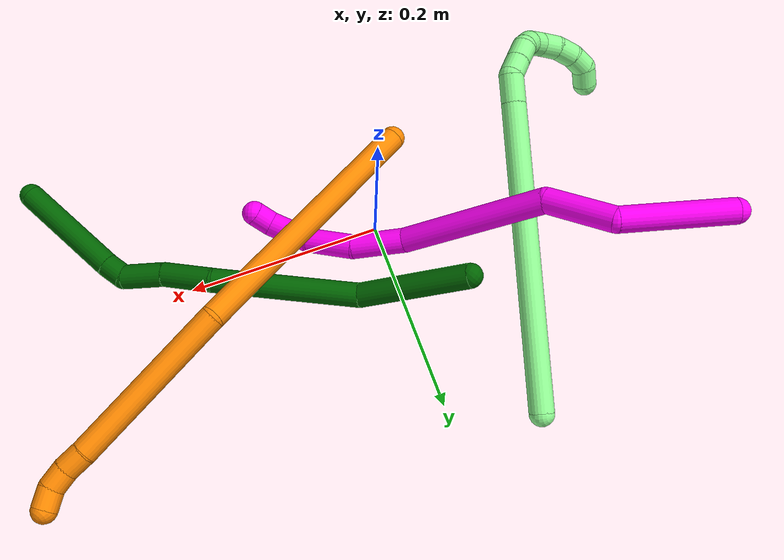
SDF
<sdf version="1.7">
 <world name="default">
  <model name="6">
   <static>0</static>
   <link name="6">
    <collision name="collision-cylinder-e_1_1_4">
     <pose>0.042302 -0.031732 0.026113 0.882244 0.799871 0.393996</pose>
     <geometry><cylinder><radius>0.0125</radius><length>0.117955</length></cylinder></geometry>
     <surface>
      <friction><ode><mu>1.16</mu><mu2>1.16</mu2><slip1>0</slip1><slip2>0</slip2></ode></friction>
      <contact><ode><kp>1e+06</kp><kd>1</kd><max_vel>0</max_vel><min_depth>0.001</min_depth></ode></contact>
     </surface>
    </collision>
    <visual name="visual-cylinder-e_1_1_4">
     <pose>0.042302 -0.031732 0.026113 0.882244 0.799871 0.393996</pose>
     <geometry><cylinder><radius>0.0125</radius><length>0.117955</length></cylinder></geometry>
     <material><ambient>0 0.392157 0.003922 1</ambient></material>
    </visual>
    <collision name="collision-cylinder-e_2_4_5">
     <pose>0.126405 -0.082142 0.11052 0.310066 0.599132 0.096467</pose>
     <geometry><cylinder><radius>0.0125</radius><length>0.148247</length></cylinder></geometry>
     <surface>
      <friction><ode><mu>1.16</mu><mu2>1.16</mu2><slip1>0</slip1><slip2>0</slip2></ode></friction>
      <contact><ode><kp>1e+06</kp><kd>1</kd><max_vel>0</max_vel><min_depth>0.001</min_depth></ode></contact>
     </surface>
    </collision>
    <visual name="visual-cylinder-e_2_4_5">
     <pose>0.126405 -0.082142 0.11052 0.310066 0.599132 0.096467</pose>
     <geometry><cylinder><radius>0.0125</radius><length>0.148247</length></cylinder></geometry>
     <material><ambient>0 0.392157 0.003922 1</ambient></material>
    </visual>
    <collision name="collision-cylinder-e_3_5_6">
     <pose>0.182518 -0.114071 0.18699 0.629924 0.566687 0.18917</pose>
     <geometry><cylinder><radius>0.0125</radius><length>0.053323</length></cylinder></geometry>
     <surface>
      <friction><ode><mu>1.16</mu><mu2>1.16</mu2><slip1>0</slip1><slip2>0</slip2></ode></friction>
      <contact><ode><kp>1e+06</kp><kd>1</kd><max_vel>0</max_vel><min_depth>0.001</min_depth></ode></contact>
     </surface>
    </collision>
    <visual name="visual-cylinder-e_3_5_6">
     <pose>0.182518 -0.114071 0.18699 0.629924 0.566687 0.18917</pose>
     <geometry><cylinder><radius>0.0125</radius><length>0.053323</length></cylinder></geometry>
     <material><ambient>0 0.392157 0.003922 1</ambient></material>
    </visual>
    <collision name="collision-cylinder-e_4_6_7">
     <pose>0.211823 -0.135432 0.218982 0.530873 0.752261 0.213906</pose>
     <geometry><cylinder><radius>0.0125</radius><length>0.043882</length></cylinder></geometry>
     <surface>
      <friction><ode><mu>1.16</mu><mu2>1.16</mu2><slip1>0</slip1><slip2>0</slip2></ode></friction>
      <contact><ode><kp>1e+06</kp><kd>1</kd><max_vel>0</max_vel><min_depth>0.001</min_depth></ode></contact>
     </surface>
    </collision>
    <visual name="visual-cylinder-e_4_6_7">
     <pose>0.211823 -0.135432 0.218982 0.530873 0.752261 0.213906</pose>
     <geometry><cylinder><radius>0.0125</radius><length>0.043882</length></cylinder></geometry>
     <material><ambient>0 0.392157 0.003922 1</ambient></material>
    </visual>
    <collision name="collision-cylinder-e_5_7_8">
     <pose>0.227947 -0.149121 0.242446 0.524182 0.101247 0.027182</pose>
     <geometry><cylinder><radius>0.0125</radius><length>0.022406</length></cylinder></geometry>
     <surface>
      <friction><ode><mu>1.16</mu><mu2>1.16</mu2><slip1>0</slip1><slip2>0</slip2></ode></friction>
      <contact><ode><kp>1e+06</kp><kd>1</kd><max_vel>0</max_vel><min_depth>0.001</min_depth></ode></contact>
     </surface>
    </collision>
    <visual name="visual-cylinder-e_5_7_8">
     <pose>0.227947 -0.149121 0.242446 0.524182 0.101247 0.027182</pose>
     <geometry><cylinder><radius>0.0125</radius><length>0.022406</length></cylinder></geometry>
     <material><ambient>0 0.392157 0.003922 1</ambient></material>
    </visual>
    <collision name="collision-cylinder-e_6_8_2">
     <pose>0.229034 -0.181594 0.302458 0.490491 -0.000801 -0.0002</pose>
     <geometry><cylinder><radius>0.0125</radius><length>0.114188</length></cylinder></geometry>
     <surface>
      <friction><ode><mu>1.16</mu><mu2>1.16</mu2><slip1>0</slip1><slip2>0</slip2></ode></friction>
      <contact><ode><kp>1e+06</kp><kd>1</kd><max_vel>0</max_vel><min_depth>0.001</min_depth></ode></contact>
     </surface>
    </collision>
    <visual name="visual-cylinder-e_6_8_2">
     <pose>0.229034 -0.181594 0.302458 0.490491 -0.000801 -0.0002</pose>
     <geometry><cylinder><radius>0.0125</radius><length>0.114188</length></cylinder></geometry>
     <material><ambient>0 0.392157 0.003922 1</ambient></material>
    </visual>
    <collision name="collision-sphere-2">
     <pose>0.228988 -0.208489 0.352821 0 -0 0</pose>
     <geometry><sphere><radius>0.0125</radius></sphere></geometry>
     <surface>
      <friction><ode><mu>1.16</mu><mu2>1.16</mu2><slip1>0</slip1><slip2>0</slip2></ode></friction>
      <contact><ode><kp>1e+06</kp><kd>1</kd><max_vel>0</max_vel><min_depth>0.001</min_depth></ode></contact>
     </surface>
    </collision>
    <visual name="visual-sphere-2">
     <pose>0.228988 -0.208489 0.352821 0 -0 0</pose>
     <geometry><sphere><radius>0.0125</radius></sphere></geometry>
     <material><ambient>0 0.392157 0.003922 1</ambient></material>
    </visual>
    <collision name="collision-sphere-4">
     <pose>0.084605 -0.063465 0.052226 0 -0 0</pose>
     <geometry><sphere><radius>0.0125</radius></sphere></geometry>
     <surface>
      <friction><ode><mu>1.16</mu><mu2>1.16</mu2><slip1>0</slip1><slip2>0</slip2></ode></friction>
      <contact><ode><kp>1e+06</kp><kd>1</kd><max_vel>0</max_vel><min_depth>0.001</min_depth></ode></contact>
     </surface>
    </collision>
    <visual name="visual-sphere-4">
     <pose>0.084605 -0.063465 0.052226 0 -0 0</pose>
     <geometry><sphere><radius>0.0125</radius></sphere></geometry>
     <material><ambient>0 0.392157 0.003922 1</ambient></material>
    </visual>
    <collision name="collision-sphere-1">
     <geometry><sphere><radius>0.0125</radius></sphere></geometry>
     <surface>
      <friction><ode><mu>1.16</mu><mu2>1.16</mu2><slip1>0</slip1><slip2>0</slip2></ode></friction>
      <contact><ode><kp>1e+06</kp><kd>1</kd><max_vel>0</max_vel><min_depth>0.001</min_depth></ode></contact>
     </surface>
    </collision>
    <visual name="visual-sphere-1">
     <geometry><sphere><radius>0.0125</radius></sphere></geometry>
     <material><ambient>0 0.392157 0.003922 1</ambient></material>
    </visual>
    <collision name="collision-sphere-8">
     <pose>0.22908 -0.1547 0.252095 0 -0 0</pose>
     <geometry><sphere><radius>0.0125</radius></sphere></geometry>
     <surface>
      <friction><ode><mu>1.16</mu><mu2>1.16</mu2><slip1>0</slip1><slip2>0</slip2></ode></friction>
      <contact><ode><kp>1e+06</kp><kd>1</kd><max_vel>0</max_vel><min_depth>0.001</min_depth></ode></contact>
     </surface>
    </collision>
    <visual name="visual-sphere-8">
     <pose>0.22908 -0.1547 0.252095 0 -0 0</pose>
     <geometry><sphere><radius>0.0125</radius></sphere></geometry>
     <material><ambient>0 0.392157 0.003922 1</ambient></material>
    </visual>
    <collision name="collision-sphere-5">
     <pose>0.168205 -0.10082 0.168814 0 -0 0</pose>
     <geometry><sphere><radius>0.0125</radius></sphere></geometry>
     <surface>
      <friction><ode><mu>1.16</mu><mu2>1.16</mu2><slip1>0</slip1><slip2>0</slip2></ode></friction>
      <contact><ode><kp>1e+06</kp><kd>1</kd><max_vel>0</max_vel><min_depth>0.001</min_depth></ode></contact>
     </surface>
    </collision>
    <visual name="visual-sphere-5">
     <pose>0.168205 -0.10082 0.168814 0 -0 0</pose>
     <geometry><sphere><radius>0.0125</radius></sphere></geometry>
     <material><ambient>0 0.392157 0.003922 1</ambient></material>
    </visual>
    <collision name="collision-sphere-6">
     <pose>0.196831 -0.127321 0.205167 0 -0 0</pose>
     <geometry><sphere><radius>0.0125</radius></sphere></geometry>
     <surface>
      <friction><ode><mu>1.16</mu><mu2>1.16</mu2><slip1>0</slip1><slip2>0</slip2></ode></friction>
      <contact><ode><kp>1e+06</kp><kd>1</kd><max_vel>0</max_vel><min_depth>0.001</min_depth></ode></contact>
     </surface>
    </collision>
    <visual name="visual-sphere-6">
     <pose>0.196831 -0.127321 0.205167 0 -0 0</pose>
     <geometry><sphere><radius>0.0125</radius></sphere></geometry>
     <material><ambient>0 0.392157 0.003922 1</ambient></material>
    </visual>
    <collision name="collision-sphere-7">
     <pose>0.226815 -0.143543 0.232797 0 -0 0</pose>
     <geometry><sphere><radius>0.0125</radius></sphere></geometry>
     <surface>
      <friction><ode><mu>1.16</mu><mu2>1.16</mu2><slip1>0</slip1><slip2>0</slip2></ode></friction>
      <contact><ode><kp>1e+06</kp><kd>1</kd><max_vel>0</max_vel><min_depth>0.001</min_depth></ode></contact>
     </surface>
    </collision>
    <visual name="visual-sphere-7">
     <pose>0.226815 -0.143543 0.232797 0 -0 0</pose>
     <geometry><sphere><radius>0.0125</radius></sphere></geometry>
     <material><ambient>0 0.392157 0.003922 1</ambient></material>
    </visual>
    <inertial>
     <pose>0.148034 -0.104046 0.158028 0 -0 0</pose>
     <mass>0.5</mass>
     <inertia>
      <ixx>0.000549</ixx>
      <ixy>0</ixy>
      <ixz>0</ixz>
      <iyy>0.000563</iyy>
      <iyz>0</iyz>
      <izz>-2.6e-05</izz>
     </inertia>
    </inertial>
   </link>
   <pose>-0.055847 0.107338 0.090018 1.06512 0.288699 0.488603</pose>
  </model>
  <model name="10">
   <static>0</static>
   <link name="10">
    <collision name="collision-cylinder-e_1_1_4">
     <pose>-0.002998 0.012902 -0.054437 -2.90889 -0.053529 0.45032</pose>
     <geometry><cylinder><radius>0.0125</radius><length>0.11205</length></cylinder></geometry>
     <surface>
      <friction><ode><mu>1.16</mu><mu2>1.16</mu2><slip1>0</slip1><slip2>0</slip2></ode></friction>
      <contact><ode><kp>1e+06</kp><kd>1</kd><max_vel>0</max_vel><min_depth>0.001</min_depth></ode></contact>
     </surface>
    </collision>
    <visual name="visual-cylinder-e_1_1_4">
     <pose>-0.002998 0.012902 -0.054437 -2.90889 -0.053529 0.45032</pose>
     <geometry><cylinder><radius>0.0125</radius><length>0.11205</length></cylinder></geometry>
     <material><ambient>1 0 0.964706 1</ambient></material>
    </visual>
    <collision name="collision-cylinder-e_2_4_5">
     <pose>-0.002579 0.011115 -0.139826 2.69852 0.099382 0.434632</pose>
     <geometry><cylinder><radius>0.0125</radius><length>0.068859</length></cylinder></geometry>
     <surface>
      <friction><ode><mu>1.16</mu><mu2>1.16</mu2><slip1>0</slip1><slip2>0</slip2></ode></friction>
      <contact><ode><kp>1e+06</kp><kd>1</kd><max_vel>0</max_vel><min_depth>0.001</min_depth></ode></contact>
     </surface>
    </collision>
    <visual name="visual-cylinder-e_2_4_5">
     <pose>-0.002579 0.011115 -0.139826 2.69852 0.099382 0.434632</pose>
     <geometry><cylinder><radius>0.0125</radius><length>0.068859</length></cylinder></geometry>
     <material><ambient>1 0 0.964706 1</ambient></material>
    </visual>
    <collision name="collision-cylinder-e_3_5_6">
     <pose>-0.029436 -0.026408 -0.237065 2.80982 -0.407611 -1.77988</pose>
     <geometry><cylinder><radius>0.0125</radius><length>0.152735</length></cylinder></geometry>
     <surface>
      <friction><ode><mu>1.16</mu><mu2>1.16</mu2><slip1>0</slip1><slip2>0</slip2></ode></friction>
      <contact><ode><kp>1e+06</kp><kd>1</kd><max_vel>0</max_vel><min_depth>0.001</min_depth></ode></contact>
     </surface>
    </collision>
    <visual name="visual-cylinder-e_3_5_6">
     <pose>-0.029436 -0.026408 -0.237065 2.80982 -0.407611 -1.77988</pose>
     <geometry><cylinder><radius>0.0125</radius><length>0.152735</length></cylinder></geometry>
     <material><ambient>1 0 0.964706 1</ambient></material>
    </visual>
    <collision name="collision-cylinder-e_4_6_7">
     <pose>-0.065121 -0.050949 -0.329663 3.07691 -0.20243 -2.52486</pose>
     <geometry><cylinder><radius>0.0125</radius><length>0.053831</length></cylinder></geometry>
     <surface>
      <friction><ode><mu>1.16</mu><mu2>1.16</mu2><slip1>0</slip1><slip2>0</slip2></ode></friction>
      <contact><ode><kp>1e+06</kp><kd>1</kd><max_vel>0</max_vel><min_depth>0.001</min_depth></ode></contact>
     </surface>
    </collision>
    <visual name="visual-cylinder-e_4_6_7">
     <pose>-0.065121 -0.050949 -0.329663 3.07691 -0.20243 -2.52486</pose>
     <geometry><cylinder><radius>0.0125</radius><length>0.053831</length></cylinder></geometry>
     <material><ambient>1 0 0.964706 1</ambient></material>
    </visual>
    <collision name="collision-cylinder-e_5_7_8">
     <pose>-0.069864 -0.057386 -0.379016 2.93902 0.028383 0.27749</pose>
     <geometry><cylinder><radius>0.0125</radius><length>0.047067</length></cylinder></geometry>
     <surface>
      <friction><ode><mu>1.16</mu><mu2>1.16</mu2><slip1>0</slip1><slip2>0</slip2></ode></friction>
      <contact><ode><kp>1e+06</kp><kd>1</kd><max_vel>0</max_vel><min_depth>0.001</min_depth></ode></contact>
     </surface>
    </collision>
    <visual name="visual-cylinder-e_5_7_8">
     <pose>-0.069864 -0.057386 -0.379016 2.93902 0.028383 0.27749</pose>
     <geometry><cylinder><radius>0.0125</radius><length>0.047067</length></cylinder></geometry>
     <material><ambient>1 0 0.964706 1</ambient></material>
    </visual>
    <collision name="collision-cylinder-e_6_8_9">
     <pose>-0.063234 -0.067988 -0.422625 2.86359 0.271894 1.54828</pose>
     <geometry><cylinder><radius>0.0125</radius><length>0.044405</length></cylinder></geometry>
     <surface>
      <friction><ode><mu>1.16</mu><mu2>1.16</mu2><slip1>0</slip1><slip2>0</slip2></ode></friction>
      <contact><ode><kp>1e+06</kp><kd>1</kd><max_vel>0</max_vel><min_depth>0.001</min_depth></ode></contact>
     </surface>
    </collision>
    <visual name="visual-cylinder-e_6_8_9">
     <pose>-0.063234 -0.067988 -0.422625 2.86359 0.271894 1.54828</pose>
     <geometry><cylinder><radius>0.0125</radius><length>0.044405</length></cylinder></geometry>
     <material><ambient>1 0 0.964706 1</ambient></material>
    </visual>
    <collision name="collision-cylinder-e_7_9_2">
     <pose>-0.051136 -0.071053 -0.451271 -2.80753 0.622248 -2.17577</pose>
     <geometry><cylinder><radius>0.0125</radius><length>0.021053</length></cylinder></geometry>
     <surface>
      <friction><ode><mu>1.16</mu><mu2>1.16</mu2><slip1>0</slip1><slip2>0</slip2></ode></friction>
      <contact><ode><kp>1e+06</kp><kd>1</kd><max_vel>0</max_vel><min_depth>0.001</min_depth></ode></contact>
     </surface>
    </collision>
    <visual name="visual-cylinder-e_7_9_2">
     <pose>-0.051136 -0.071053 -0.451271 -2.80753 0.622248 -2.17577</pose>
     <geometry><cylinder><radius>0.0125</radius><length>0.021053</length></cylinder></geometry>
     <material><ambient>1 0 0.964706 1</ambient></material>
    </visual>
    <collision name="collision-sphere-2">
     <pose>-0.045001 -0.068248 -0.459352 0 -0 0</pose>
     <geometry><sphere><radius>0.0125</radius></sphere></geometry>
     <surface>
      <friction><ode><mu>1.16</mu><mu2>1.16</mu2><slip1>0</slip1><slip2>0</slip2></ode></friction>
      <contact><ode><kp>1e+06</kp><kd>1</kd><max_vel>0</max_vel><min_depth>0.001</min_depth></ode></contact>
     </surface>
    </collision>
    <visual name="visual-sphere-2">
     <pose>-0.045001 -0.068248 -0.459352 0 -0 0</pose>
     <geometry><sphere><radius>0.0125</radius></sphere></geometry>
     <material><ambient>1 0 0.964706 1</ambient></material>
    </visual>
    <collision name="collision-sphere-9">
     <pose>-0.057271 -0.073857 -0.443191 0 -0 0</pose>
     <geometry><sphere><radius>0.0125</radius></sphere></geometry>
     <surface>
      <friction><ode><mu>1.16</mu><mu2>1.16</mu2><slip1>0</slip1><slip2>0</slip2></ode></friction>
      <contact><ode><kp>1e+06</kp><kd>1</kd><max_vel>0</max_vel><min_depth>0.001</min_depth></ode></contact>
     </surface>
    </collision>
    <visual name="visual-sphere-9">
     <pose>-0.057271 -0.073857 -0.443191 0 -0 0</pose>
     <geometry><sphere><radius>0.0125</radius></sphere></geometry>
     <material><ambient>1 0 0.964706 1</ambient></material>
    </visual>
    <collision name="collision-sphere-4">
     <pose>-0.005995 0.025803 -0.108874 0 -0 0</pose>
     <geometry><sphere><radius>0.0125</radius></sphere></geometry>
     <surface>
      <friction><ode><mu>1.16</mu><mu2>1.16</mu2><slip1>0</slip1><slip2>0</slip2></ode></friction>
      <contact><ode><kp>1e+06</kp><kd>1</kd><max_vel>0</max_vel><min_depth>0.001</min_depth></ode></contact>
     </surface>
    </collision>
    <visual name="visual-sphere-4">
     <pose>-0.005995 0.025803 -0.108874 0 -0 0</pose>
     <geometry><sphere><radius>0.0125</radius></sphere></geometry>
     <material><ambient>1 0 0.964706 1</ambient></material>
    </visual>
    <collision name="collision-sphere-1">
     <geometry><sphere><radius>0.0125</radius></sphere></geometry>
     <surface>
      <friction><ode><mu>1.16</mu><mu2>1.16</mu2><slip1>0</slip1><slip2>0</slip2></ode></friction>
      <contact><ode><kp>1e+06</kp><kd>1</kd><max_vel>0</max_vel><min_depth>0.001</min_depth></ode></contact>
     </surface>
    </collision>
    <visual name="visual-sphere-1">
     <geometry><sphere><radius>0.0125</radius></sphere></geometry>
     <material><ambient>1 0 0.964706 1</ambient></material>
    </visual>
    <collision name="collision-sphere-8">
     <pose>-0.069197 -0.062118 -0.402059 0 -0 0</pose>
     <geometry><sphere><radius>0.0125</radius></sphere></geometry>
     <surface>
      <friction><ode><mu>1.16</mu><mu2>1.16</mu2><slip1>0</slip1><slip2>0</slip2></ode></friction>
      <contact><ode><kp>1e+06</kp><kd>1</kd><max_vel>0</max_vel><min_depth>0.001</min_depth></ode></contact>
     </surface>
    </collision>
    <visual name="visual-sphere-8">
     <pose>-0.069197 -0.062118 -0.402059 0 -0 0</pose>
     <geometry><sphere><radius>0.0125</radius></sphere></geometry>
     <material><ambient>1 0 0.964706 1</ambient></material>
    </visual>
    <collision name="collision-sphere-5">
     <pose>0.000837 -0.003572 -0.170777 0 -0 0</pose>
     <geometry><sphere><radius>0.0125</radius></sphere></geometry>
     <surface>
      <friction><ode><mu>1.16</mu><mu2>1.16</mu2><slip1>0</slip1><slip2>0</slip2></ode></friction>
      <contact><ode><kp>1e+06</kp><kd>1</kd><max_vel>0</max_vel><min_depth>0.001</min_depth></ode></contact>
     </surface>
    </collision>
    <visual name="visual-sphere-5">
     <pose>0.000837 -0.003572 -0.170777 0 -0 0</pose>
     <geometry><sphere><radius>0.0125</radius></sphere></geometry>
     <material><ambient>1 0 0.964706 1</ambient></material>
    </visual>
    <collision name="collision-sphere-6">
     <pose>-0.05971 -0.049245 -0.303352 0 -0 0</pose>
     <geometry><sphere><radius>0.0125</radius></sphere></geometry>
     <surface>
      <friction><ode><mu>1.16</mu><mu2>1.16</mu2><slip1>0</slip1><slip2>0</slip2></ode></friction>
      <contact><ode><kp>1e+06</kp><kd>1</kd><max_vel>0</max_vel><min_depth>0.001</min_depth></ode></contact>
     </surface>
    </collision>
    <visual name="visual-sphere-6">
     <pose>-0.05971 -0.049245 -0.303352 0 -0 0</pose>
     <geometry><sphere><radius>0.0125</radius></sphere></geometry>
     <material><ambient>1 0 0.964706 1</ambient></material>
    </visual>
    <collision name="collision-sphere-7">
     <pose>-0.070532 -0.052653 -0.355973 0 -0 0</pose>
     <geometry><sphere><radius>0.0125</radius></sphere></geometry>
     <surface>
      <friction><ode><mu>1.16</mu><mu2>1.16</mu2><slip1>0</slip1><slip2>0</slip2></ode></friction>
      <contact><ode><kp>1e+06</kp><kd>1</kd><max_vel>0</max_vel><min_depth>0.001</min_depth></ode></contact>
     </surface>
    </collision>
    <visual name="visual-sphere-7">
     <pose>-0.070532 -0.052653 -0.355973 0 -0 0</pose>
     <geometry><sphere><radius>0.0125</radius></sphere></geometry>
     <material><ambient>1 0 0.964706 1</ambient></material>
    </visual>
    <inertial>
     <pose>-0.031375 -0.023562 -0.231577 0 -0 0</pose>
     <mass>0.5</mass>
     <inertia>
      <ixx>-0.000132</ixx>
      <ixy>0</ixy>
      <ixz>0</ixz>
      <iyy>-0.000238</iyy>
      <iyz>0</iyz>
      <izz>0.000167</izz>
     </inertia>
    </inertial>
   </link>
   <pose>-0.291333 0.150379 0.156286 1.46189 -0.677534 -1.93403</pose>
  </model>
  <model name="13">
   <static>0</static>
   <link name="13">
    <collision name="collision-cylinder-e_1_1_4">
     <pose>-0.008809 -0.151946 -0.024267 1.72917 -0.057189 -0.06704</pose>
     <geometry><cylinder><radius>0.0125</radius><length>0.308247</length></cylinder></geometry>
     <surface>
      <friction><ode><mu>1.16</mu><mu2>1.16</mu2><slip1>0</slip1><slip2>0</slip2></ode></friction>
      <contact><ode><kp>1e+06</kp><kd>1</kd><max_vel>0</max_vel><min_depth>0.001</min_depth></ode></contact>
     </surface>
    </collision>
    <visual name="visual-cylinder-e_1_1_4">
     <pose>-0.008809 -0.151946 -0.024267 1.72917 -0.057189 -0.06704</pose>
     <geometry><cylinder><radius>0.0125</radius><length>0.308247</length></cylinder></geometry>
     <material><ambient>0.564706 0.984314 0.572549 1</ambient></material>
    </visual>
    <collision name="collision-cylinder-e_2_4_5">
     <pose>-0.0177 -0.318422 -0.050397 1.6983 -0.005561 -0.00632</pose>
     <geometry><cylinder><radius>0.0125</radius><length>0.0293</length></cylinder></geometry>
     <surface>
      <friction><ode><mu>1.16</mu><mu2>1.16</mu2><slip1>0</slip1><slip2>0</slip2></ode></friction>
      <contact><ode><kp>1e+06</kp><kd>1</kd><max_vel>0</max_vel><min_depth>0.001</min_depth></ode></contact>
     </surface>
    </collision>
    <visual name="visual-cylinder-e_2_4_5">
     <pose>-0.0177 -0.318422 -0.050397 1.6983 -0.005561 -0.00632</pose>
     <geometry><cylinder><radius>0.0125</radius><length>0.0293</length></cylinder></geometry>
     <material><ambient>0.564706 0.984314 0.572549 1</ambient></material>
    </visual>
    <collision name="collision-cylinder-e_3_5_6">
     <pose>-0.024058 -0.340981 -0.052715 1.62739 -0.66275 -0.698371</pose>
     <geometry><cylinder><radius>0.0125</radius><length>0.020401</length></cylinder></geometry>
     <surface>
      <friction><ode><mu>1.16</mu><mu2>1.16</mu2><slip1>0</slip1><slip2>0</slip2></ode></friction>
      <contact><ode><kp>1e+06</kp><kd>1</kd><max_vel>0</max_vel><min_depth>0.001</min_depth></ode></contact>
     </surface>
    </collision>
    <visual name="visual-cylinder-e_3_5_6">
     <pose>-0.024058 -0.340981 -0.052715 1.62739 -0.66275 -0.698371</pose>
     <geometry><cylinder><radius>0.0125</radius><length>0.020401</length></cylinder></geometry>
     <material><ambient>0.564706 0.984314 0.572549 1</ambient></material>
    </visual>
    <collision name="collision-cylinder-e_4_6_7">
     <pose>-0.036811 -0.357214 -0.053611 1.62451 -0.667603 -0.70158</pose>
     <geometry><cylinder><radius>0.0125</radius><length>0.020925</length></cylinder></geometry>
     <surface>
      <friction><ode><mu>1.16</mu><mu2>1.16</mu2><slip1>0</slip1><slip2>0</slip2></ode></friction>
      <contact><ode><kp>1e+06</kp><kd>1</kd><max_vel>0</max_vel><min_depth>0.001</min_depth></ode></contact>
     </surface>
    </collision>
    <visual name="visual-cylinder-e_4_6_7">
     <pose>-0.036811 -0.357214 -0.053611 1.62451 -0.667603 -0.70158</pose>
     <geometry><cylinder><radius>0.0125</radius><length>0.020925</length></cylinder></geometry>
     <material><ambient>0.564706 0.984314 0.572549 1</ambient></material>
    </visual>
    <collision name="collision-cylinder-e_5_7_8">
     <pose>-0.052455 -0.369114 -0.056923 2.2312 -1.09871 -1.79269</pose>
     <geometry><cylinder><radius>0.0125</radius><length>0.020584</length></cylinder></geometry>
     <surface>
      <friction><ode><mu>1.16</mu><mu2>1.16</mu2><slip1>0</slip1><slip2>0</slip2></ode></friction>
      <contact><ode><kp>1e+06</kp><kd>1</kd><max_vel>0</max_vel><min_depth>0.001</min_depth></ode></contact>
     </surface>
    </collision>
    <visual name="visual-cylinder-e_5_7_8">
     <pose>-0.052455 -0.369114 -0.056923 2.2312 -1.09871 -1.79269</pose>
     <geometry><cylinder><radius>0.0125</radius><length>0.020584</length></cylinder></geometry>
     <material><ambient>0.564706 0.984314 0.572549 1</ambient></material>
    </visual>
    <collision name="collision-cylinder-e_6_8_9">
     <pose>-0.071625 -0.373448 -0.059706 1.43389 -1.50659 -1.37056</pose>
     <geometry><cylinder><radius>0.0125</radius><length>0.020048</length></cylinder></geometry>
     <surface>
      <friction><ode><mu>1.16</mu><mu2>1.16</mu2><slip1>0</slip1><slip2>0</slip2></ode></friction>
      <contact><ode><kp>1e+06</kp><kd>1</kd><max_vel>0</max_vel><min_depth>0.001</min_depth></ode></contact>
     </surface>
    </collision>
    <visual name="visual-cylinder-e_6_8_9">
     <pose>-0.071625 -0.373448 -0.059706 1.43389 -1.50659 -1.37056</pose>
     <geometry><cylinder><radius>0.0125</radius><length>0.020048</length></cylinder></geometry>
     <material><ambient>0.564706 0.984314 0.572549 1</ambient></material>
    </visual>
    <collision name="collision-cylinder-e_7_9_10">
     <pose>-0.090306 -0.372819 -0.054362 -0.236352 -1.01362 0.131641</pose>
     <geometry><cylinder><radius>0.0125</radius><length>0.02045</length></cylinder></geometry>
     <surface>
      <friction><ode><mu>1.16</mu><mu2>1.16</mu2><slip1>0</slip1><slip2>0</slip2></ode></friction>
      <contact><ode><kp>1e+06</kp><kd>1</kd><max_vel>0</max_vel><min_depth>0.001</min_depth></ode></contact>
     </surface>
    </collision>
    <visual name="visual-cylinder-e_7_9_10">
     <pose>-0.090306 -0.372819 -0.054362 -0.236352 -1.01362 0.131641</pose>
     <geometry><cylinder><radius>0.0125</radius><length>0.02045</length></cylinder></geometry>
     <material><ambient>0.564706 0.984314 0.572549 1</ambient></material>
    </visual>
    <collision name="collision-cylinder-e_8_10_11">
     <pose>-0.107433 -0.368027 -0.045032 -0.713515 -1.00312 0.403179</pose>
     <geometry><cylinder><radius>0.0125</radius><length>0.02004</length></cylinder></geometry>
     <surface>
      <friction><ode><mu>1.16</mu><mu2>1.16</mu2><slip1>0</slip1><slip2>0</slip2></ode></friction>
      <contact><ode><kp>1e+06</kp><kd>1</kd><max_vel>0</max_vel><min_depth>0.001</min_depth></ode></contact>
     </surface>
    </collision>
    <visual name="visual-cylinder-e_8_10_11">
     <pose>-0.107433 -0.368027 -0.045032 -0.713515 -1.00312 0.403179</pose>
     <geometry><cylinder><radius>0.0125</radius><length>0.02004</length></cylinder></geometry>
     <material><ambient>0.564706 0.984314 0.572549 1</ambient></material>
    </visual>
    <collision name="collision-cylinder-e_9_11_12">
     <pose>-0.124244 -0.359401 -0.03893 -1.1923 -0.989992 0.702192</pose>
     <geometry><cylinder><radius>0.0125</radius><length>0.020005</length></cylinder></geometry>
     <surface>
      <friction><ode><mu>1.16</mu><mu2>1.16</mu2><slip1>0</slip1><slip2>0</slip2></ode></friction>
      <contact><ode><kp>1e+06</kp><kd>1</kd><max_vel>0</max_vel><min_depth>0.001</min_depth></ode></contact>
     </surface>
    </collision>
    <visual name="visual-cylinder-e_9_11_12">
     <pose>-0.124244 -0.359401 -0.03893 -1.1923 -0.989992 0.702192</pose>
     <geometry><cylinder><radius>0.0125</radius><length>0.020005</length></cylinder></geometry>
     <material><ambient>0.564706 0.984314 0.572549 1</ambient></material>
    </visual>
    <collision name="collision-cylinder-e_10_12_2">
     <pose>-0.138071 -0.346261 -0.039247 -1.85454 -0.578159 0.755013</pose>
     <geometry><cylinder><radius>0.0125</radius><length>0.020001</length></cylinder></geometry>
     <surface>
      <friction><ode><mu>1.16</mu><mu2>1.16</mu2><slip1>0</slip1><slip2>0</slip2></ode></friction>
      <contact><ode><kp>1e+06</kp><kd>1</kd><max_vel>0</max_vel><min_depth>0.001</min_depth></ode></contact>
     </surface>
    </collision>
    <visual name="visual-cylinder-e_10_12_2">
     <pose>-0.138071 -0.346261 -0.039247 -1.85454 -0.578159 0.755013</pose>
     <geometry><cylinder><radius>0.0125</radius><length>0.020001</length></cylinder></geometry>
     <material><ambient>0.564706 0.984314 0.572549 1</ambient></material>
    </visual>
    <collision name="collision-sphere-2">
     <pose>-0.143536 -0.338221 -0.041591 0 -0 0</pose>
     <geometry><sphere><radius>0.0125</radius></sphere></geometry>
     <surface>
      <friction><ode><mu>1.16</mu><mu2>1.16</mu2><slip1>0</slip1><slip2>0</slip2></ode></friction>
      <contact><ode><kp>1e+06</kp><kd>1</kd><max_vel>0</max_vel><min_depth>0.001</min_depth></ode></contact>
     </surface>
    </collision>
    <visual name="visual-sphere-2">
     <pose>-0.143536 -0.338221 -0.041591 0 -0 0</pose>
     <geometry><sphere><radius>0.0125</radius></sphere></geometry>
     <material><ambient>0.564706 0.984314 0.572549 1</ambient></material>
    </visual>
    <collision name="collision-sphere-12">
     <pose>-0.132606 -0.354301 -0.036902 0 -0 0</pose>
     <geometry><sphere><radius>0.0125</radius></sphere></geometry>
     <surface>
      <friction><ode><mu>1.16</mu><mu2>1.16</mu2><slip1>0</slip1><slip2>0</slip2></ode></friction>
      <contact><ode><kp>1e+06</kp><kd>1</kd><max_vel>0</max_vel><min_depth>0.001</min_depth></ode></contact>
     </surface>
    </collision>
    <visual name="visual-sphere-12">
     <pose>-0.132606 -0.354301 -0.036902 0 -0 0</pose>
     <geometry><sphere><radius>0.0125</radius></sphere></geometry>
     <material><ambient>0.564706 0.984314 0.572549 1</ambient></material>
    </visual>
    <collision name="collision-sphere-11">
     <pose>-0.115882 -0.364501 -0.040958 0 -0 0</pose>
     <geometry><sphere><radius>0.0125</radius></sphere></geometry>
     <surface>
      <friction><ode><mu>1.16</mu><mu2>1.16</mu2><slip1>0</slip1><slip2>0</slip2></ode></friction>
      <contact><ode><kp>1e+06</kp><kd>1</kd><max_vel>0</max_vel><min_depth>0.001</min_depth></ode></contact>
     </surface>
    </collision>
    <visual name="visual-sphere-11">
     <pose>-0.115882 -0.364501 -0.040958 0 -0 0</pose>
     <geometry><sphere><radius>0.0125</radius></sphere></geometry>
     <material><ambient>0.564706 0.984314 0.572549 1</ambient></material>
    </visual>
    <collision name="collision-sphere-10">
     <pose>-0.098985 -0.371553 -0.049105 0 -0 0</pose>
     <geometry><sphere><radius>0.0125</radius></sphere></geometry>
     <surface>
      <friction><ode><mu>1.16</mu><mu2>1.16</mu2><slip1>0</slip1><slip2>0</slip2></ode></friction>
      <contact><ode><kp>1e+06</kp><kd>1</kd><max_vel>0</max_vel><min_depth>0.001</min_depth></ode></contact>
     </surface>
    </collision>
    <visual name="visual-sphere-10">
     <pose>-0.098985 -0.371553 -0.049105 0 -0 0</pose>
     <geometry><sphere><radius>0.0125</radius></sphere></geometry>
     <material><ambient>0.564706 0.984314 0.572549 1</ambient></material>
    </visual>
    <collision name="collision-sphere-9">
     <pose>-0.081628 -0.374085 -0.059618 0 -0 0</pose>
     <geometry><sphere><radius>0.0125</radius></sphere></geometry>
     <surface>
      <friction><ode><mu>1.16</mu><mu2>1.16</mu2><slip1>0</slip1><slip2>0</slip2></ode></friction>
      <contact><ode><kp>1e+06</kp><kd>1</kd><max_vel>0</max_vel><min_depth>0.001</min_depth></ode></contact>
     </surface>
    </collision>
    <visual name="visual-sphere-9">
     <pose>-0.081628 -0.374085 -0.059618 0 -0 0</pose>
     <geometry><sphere><radius>0.0125</radius></sphere></geometry>
     <material><ambient>0.564706 0.984314 0.572549 1</ambient></material>
    </visual>
    <collision name="collision-sphere-4">
     <pose>-0.017619 -0.303891 -0.048534 0 -0 0</pose>
     <geometry><sphere><radius>0.0125</radius></sphere></geometry>
     <surface>
      <friction><ode><mu>1.16</mu><mu2>1.16</mu2><slip1>0</slip1><slip2>0</slip2></ode></friction>
      <contact><ode><kp>1e+06</kp><kd>1</kd><max_vel>0</max_vel><min_depth>0.001</min_depth></ode></contact>
     </surface>
    </collision>
    <visual name="visual-sphere-4">
     <pose>-0.017619 -0.303891 -0.048534 0 -0 0</pose>
     <geometry><sphere><radius>0.0125</radius></sphere></geometry>
     <material><ambient>0.564706 0.984314 0.572549 1</ambient></material>
    </visual>
    <collision name="collision-sphere-1">
     <geometry><sphere><radius>0.0125</radius></sphere></geometry>
     <surface>
      <friction><ode><mu>1.16</mu><mu2>1.16</mu2><slip1>0</slip1><slip2>0</slip2></ode></friction>
      <contact><ode><kp>1e+06</kp><kd>1</kd><max_vel>0</max_vel><min_depth>0.001</min_depth></ode></contact>
     </surface>
    </collision>
    <visual name="visual-sphere-1">
     <geometry><sphere><radius>0.0125</radius></sphere></geometry>
     <material><ambient>0.564706 0.984314 0.572549 1</ambient></material>
    </visual>
    <collision name="collision-sphere-8">
     <pose>-0.061621 -0.372811 -0.059794 0 -0 0</pose>
     <geometry><sphere><radius>0.0125</radius></sphere></geometry>
     <surface>
      <friction><ode><mu>1.16</mu><mu2>1.16</mu2><slip1>0</slip1><slip2>0</slip2></ode></friction>
      <contact><ode><kp>1e+06</kp><kd>1</kd><max_vel>0</max_vel><min_depth>0.001</min_depth></ode></contact>
     </surface>
    </collision>
    <visual name="visual-sphere-8">
     <pose>-0.061621 -0.372811 -0.059794 0 -0 0</pose>
     <geometry><sphere><radius>0.0125</radius></sphere></geometry>
     <material><ambient>0.564706 0.984314 0.572549 1</ambient></material>
    </visual>
    <collision name="collision-sphere-5">
     <pose>-0.017782 -0.332953 -0.05226 0 -0 0</pose>
     <geometry><sphere><radius>0.0125</radius></sphere></geometry>
     <surface>
      <friction><ode><mu>1.16</mu><mu2>1.16</mu2><slip1>0</slip1><slip2>0</slip2></ode></friction>
      <contact><ode><kp>1e+06</kp><kd>1</kd><max_vel>0</max_vel><min_depth>0.001</min_depth></ode></contact>
     </surface>
    </collision>
    <visual name="visual-sphere-5">
     <pose>-0.017782 -0.332953 -0.05226 0 -0 0</pose>
     <geometry><sphere><radius>0.0125</radius></sphere></geometry>
     <material><ambient>0.564706 0.984314 0.572549 1</ambient></material>
    </visual>
    <collision name="collision-sphere-6">
     <pose>-0.030334 -0.349009 -0.05317 0 -0 0</pose>
     <geometry><sphere><radius>0.0125</radius></sphere></geometry>
     <surface>
      <friction><ode><mu>1.16</mu><mu2>1.16</mu2><slip1>0</slip1><slip2>0</slip2></ode></friction>
      <contact><ode><kp>1e+06</kp><kd>1</kd><max_vel>0</max_vel><min_depth>0.001</min_depth></ode></contact>
     </surface>
    </collision>
    <visual name="visual-sphere-6">
     <pose>-0.030334 -0.349009 -0.05317 0 -0 0</pose>
     <geometry><sphere><radius>0.0125</radius></sphere></geometry>
     <material><ambient>0.564706 0.984314 0.572549 1</ambient></material>
    </visual>
    <collision name="collision-sphere-7">
     <pose>-0.043289 -0.365418 -0.054052 0 -0 0</pose>
     <geometry><sphere><radius>0.0125</radius></sphere></geometry>
     <surface>
      <friction><ode><mu>1.16</mu><mu2>1.16</mu2><slip1>0</slip1><slip2>0</slip2></ode></friction>
      <contact><ode><kp>1e+06</kp><kd>1</kd><max_vel>0</max_vel><min_depth>0.001</min_depth></ode></contact>
     </surface>
    </collision>
    <visual name="visual-sphere-7">
     <pose>-0.043289 -0.365418 -0.054052 0 -0 0</pose>
     <geometry><sphere><radius>0.0125</radius></sphere></geometry>
     <material><ambient>0.564706 0.984314 0.572549 1</ambient></material>
    </visual>
    <inertial>
     <pose>-0.032515 -0.229594 -0.034201 0 -0 0</pose>
     <mass>0.5</mass>
     <inertia>
      <ixx>0.002275</ixx>
      <ixy>0</ixy>
      <ixz>0</ixz>
      <iyy>-0.00056</iyy>
      <iyz>0</iyz>
      <izz>0.002568</izz>
     </inertia>
    </inertial>
   </link>
   <pose>-0.081213 0.244565 0.029795 -0.513692 -0.781548 0.018951</pose>
  </model>
  <model name="19">
   <static>0</static>
   <link name="19">
    <collision name="collision-cylinder-e_1_1_4">
     <pose>0.023024 0.012958 0.132874 -0.097215 0.170776 -0.008328</pose>
     <geometry><cylinder><radius>0.0125</radius><length>0.270951</length></cylinder></geometry>
     <surface>
      <friction><ode><mu>1.16</mu><mu2>1.16</mu2><slip1>0</slip1><slip2>0</slip2></ode></friction>
      <contact><ode><kp>1e+06</kp><kd>1</kd><max_vel>0</max_vel><min_depth>0.001</min_depth></ode></contact>
     </surface>
    </collision>
    <visual name="visual-cylinder-e_1_1_4">
     <pose>0.023024 0.012958 0.132874 -0.097215 0.170776 -0.008328</pose>
     <geometry><cylinder><radius>0.0125</radius><length>0.270951</length></cylinder></geometry>
     <material><ambient>0.996078 0.537255 0 1</ambient></material>
    </visual>
    <collision name="collision-cylinder-e_2_4_5">
     <pose>0.080604 0.052641 0.336177 -0.362666 0.430103 -0.080054</pose>
     <geometry><cylinder><radius>0.0125</radius><length>0.165753</length></cylinder></geometry>
     <surface>
      <friction><ode><mu>1.16</mu><mu2>1.16</mu2><slip1>0</slip1><slip2>0</slip2></ode></friction>
      <contact><ode><kp>1e+06</kp><kd>1</kd><max_vel>0</max_vel><min_depth>0.001</min_depth></ode></contact>
     </surface>
    </collision>
    <visual name="visual-cylinder-e_2_4_5">
     <pose>0.080604 0.052641 0.336177 -0.362666 0.430103 -0.080054</pose>
     <geometry><cylinder><radius>0.0125</radius><length>0.165753</length></cylinder></geometry>
     <material><ambient>0.996078 0.537255 0 1</ambient></material>
    </visual>
    <collision name="collision-cylinder-e_3_5_6">
     <pose>0.121134 0.083125 0.415277 -0.409195 0.563614 -0.120004</pose>
     <geometry><cylinder><radius>0.0125</radius><length>0.022361</length></cylinder></geometry>
     <surface>
      <friction><ode><mu>1.16</mu><mu2>1.16</mu2><slip1>0</slip1><slip2>0</slip2></ode></friction>
      <contact><ode><kp>1e+06</kp><kd>1</kd><max_vel>0</max_vel><min_depth>0.001</min_depth></ode></contact>
     </surface>
    </collision>
    <visual name="visual-cylinder-e_3_5_6">
     <pose>0.121134 0.083125 0.415277 -0.409195 0.563614 -0.120004</pose>
     <geometry><cylinder><radius>0.0125</radius><length>0.022361</length></cylinder></geometry>
     <material><ambient>0.996078 0.537255 0 1</ambient></material>
    </visual>
    <collision name="collision-cylinder-e_4_6_7">
     <pose>0.130808 0.091076 0.432712 -0.446009 0.364067 -0.083437</pose>
     <geometry><cylinder><radius>0.0125</radius><length>0.020791</length></cylinder></geometry>
     <surface>
      <friction><ode><mu>1.16</mu><mu2>1.16</mu2><slip1>0</slip1><slip2>0</slip2></ode></friction>
      <contact><ode><kp>1e+06</kp><kd>1</kd><max_vel>0</max_vel><min_depth>0.001</min_depth></ode></contact>
     </surface>
    </collision>
    <visual name="visual-cylinder-e_4_6_7">
     <pose>0.130808 0.091076 0.432712 -0.446009 0.364067 -0.083437</pose>
     <geometry><cylinder><radius>0.0125</radius><length>0.020791</length></cylinder></geometry>
     <material><ambient>0.996078 0.537255 0 1</ambient></material>
    </visual>
    <collision name="collision-cylinder-e_5_7_2">
     <pose>0.134387 0.100799 0.449891 -0.581625 -0.012234 0.003662</pose>
     <geometry><cylinder><radius>0.0125</radius><length>0.020144</length></cylinder></geometry>
     <surface>
      <friction><ode><mu>1.16</mu><mu2>1.16</mu2><slip1>0</slip1><slip2>0</slip2></ode></friction>
      <contact><ode><kp>1e+06</kp><kd>1</kd><max_vel>0</max_vel><min_depth>0.001</min_depth></ode></contact>
     </surface>
    </collision>
    <visual name="visual-cylinder-e_5_7_2">
     <pose>0.134387 0.100799 0.449891 -0.581625 -0.012234 0.003662</pose>
     <geometry><cylinder><radius>0.0125</radius><length>0.020144</length></cylinder></geometry>
     <material><ambient>0.996078 0.537255 0 1</ambient></material>
    </visual>
    <collision name="collision-sphere-2">
     <pose>0.134263 0.106332 0.458306 0 -0 0</pose>
     <geometry><sphere><radius>0.0125</radius></sphere></geometry>
     <surface>
      <friction><ode><mu>1.16</mu><mu2>1.16</mu2><slip1>0</slip1><slip2>0</slip2></ode></friction>
      <contact><ode><kp>1e+06</kp><kd>1</kd><max_vel>0</max_vel><min_depth>0.001</min_depth></ode></contact>
     </surface>
    </collision>
    <visual name="visual-sphere-2">
     <pose>0.134263 0.106332 0.458306 0 -0 0</pose>
     <geometry><sphere><radius>0.0125</radius></sphere></geometry>
     <material><ambient>0.996078 0.537255 0 1</ambient></material>
    </visual>
    <collision name="collision-sphere-7">
     <pose>0.13451 0.095266 0.441475 0 -0 0</pose>
     <geometry><sphere><radius>0.0125</radius></sphere></geometry>
     <surface>
      <friction><ode><mu>1.16</mu><mu2>1.16</mu2><slip1>0</slip1><slip2>0</slip2></ode></friction>
      <contact><ode><kp>1e+06</kp><kd>1</kd><max_vel>0</max_vel><min_depth>0.001</min_depth></ode></contact>
     </surface>
    </collision>
    <visual name="visual-sphere-7">
     <pose>0.13451 0.095266 0.441475 0 -0 0</pose>
     <geometry><sphere><radius>0.0125</radius></sphere></geometry>
     <material><ambient>0.996078 0.537255 0 1</ambient></material>
    </visual>
    <collision name="collision-sphere-6">
     <pose>0.127107 0.086885 0.423948 0 -0 0</pose>
     <geometry><sphere><radius>0.0125</radius></sphere></geometry>
     <surface>
      <friction><ode><mu>1.16</mu><mu2>1.16</mu2><slip1>0</slip1><slip2>0</slip2></ode></friction>
      <contact><ode><kp>1e+06</kp><kd>1</kd><max_vel>0</max_vel><min_depth>0.001</min_depth></ode></contact>
     </surface>
    </collision>
    <visual name="visual-sphere-6">
     <pose>0.127107 0.086885 0.423948 0 -0 0</pose>
     <geometry><sphere><radius>0.0125</radius></sphere></geometry>
     <material><ambient>0.996078 0.537255 0 1</ambient></material>
    </visual>
    <collision name="collision-sphere-5">
     <pose>0.115161 0.079365 0.406606 0 -0 0</pose>
     <geometry><sphere><radius>0.0125</radius></sphere></geometry>
     <surface>
      <friction><ode><mu>1.16</mu><mu2>1.16</mu2><slip1>0</slip1><slip2>0</slip2></ode></friction>
      <contact><ode><kp>1e+06</kp><kd>1</kd><max_vel>0</max_vel><min_depth>0.001</min_depth></ode></contact>
     </surface>
    </collision>
    <visual name="visual-sphere-5">
     <pose>0.115161 0.079365 0.406606 0 -0 0</pose>
     <geometry><sphere><radius>0.0125</radius></sphere></geometry>
     <material><ambient>0.996078 0.537255 0 1</ambient></material>
    </visual>
    <collision name="collision-sphere-1">
     <geometry><sphere><radius>0.0125</radius></sphere></geometry>
     <surface>
      <friction><ode><mu>1.16</mu><mu2>1.16</mu2><slip1>0</slip1><slip2>0</slip2></ode></friction>
      <contact><ode><kp>1e+06</kp><kd>1</kd><max_vel>0</max_vel><min_depth>0.001</min_depth></ode></contact>
     </surface>
    </collision>
    <visual name="visual-sphere-1">
     <geometry><sphere><radius>0.0125</radius></sphere></geometry>
     <material><ambient>0.996078 0.537255 0 1</ambient></material>
    </visual>
    <collision name="collision-sphere-4">
     <pose>0.046047 0.025916 0.265749 0 -0 0</pose>
     <geometry><sphere><radius>0.0125</radius></sphere></geometry>
     <surface>
      <friction><ode><mu>1.16</mu><mu2>1.16</mu2><slip1>0</slip1><slip2>0</slip2></ode></friction>
      <contact><ode><kp>1e+06</kp><kd>1</kd><max_vel>0</max_vel><min_depth>0.001</min_depth></ode></contact>
     </surface>
    </collision>
    <visual name="visual-sphere-4">
     <pose>0.046047 0.025916 0.265749 0 -0 0</pose>
     <geometry><sphere><radius>0.0125</radius></sphere></geometry>
     <material><ambient>0.996078 0.537255 0 1</ambient></material>
    </visual>
    <inertial>
     <pose>0.055468 0.036038 0.23814 0 -0 0</pose>
     <mass>0.5</mass>
     <inertia>
      <ixx>0.001966</ixx>
      <ixy>0</ixy>
      <ixz>0</ixz>
      <iyy>0.001995</iyy>
      <iyz>0</iyz>
      <izz>-0.000696</izz>
     </inertia>
    </inertial>
   </link>
   <pose>-0.041775 -0.064633 0.063109 -1.11859 0.551312 -0.691691</pose>
  </model>
 </world>
</sdf>
